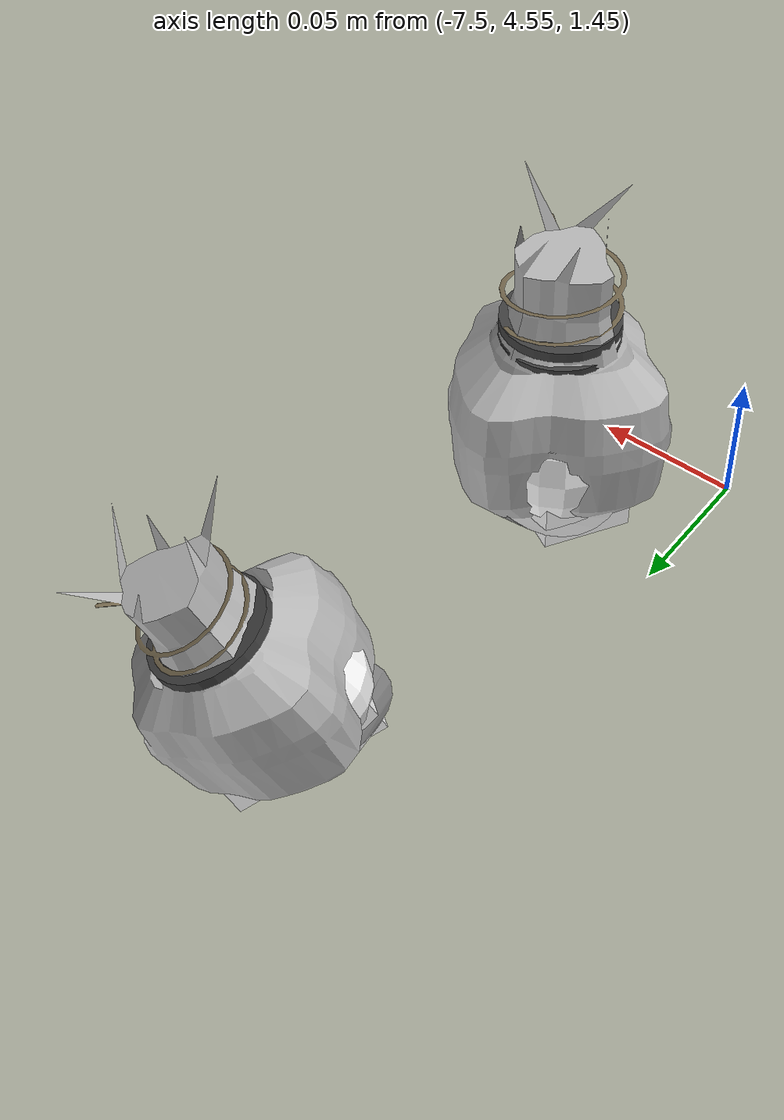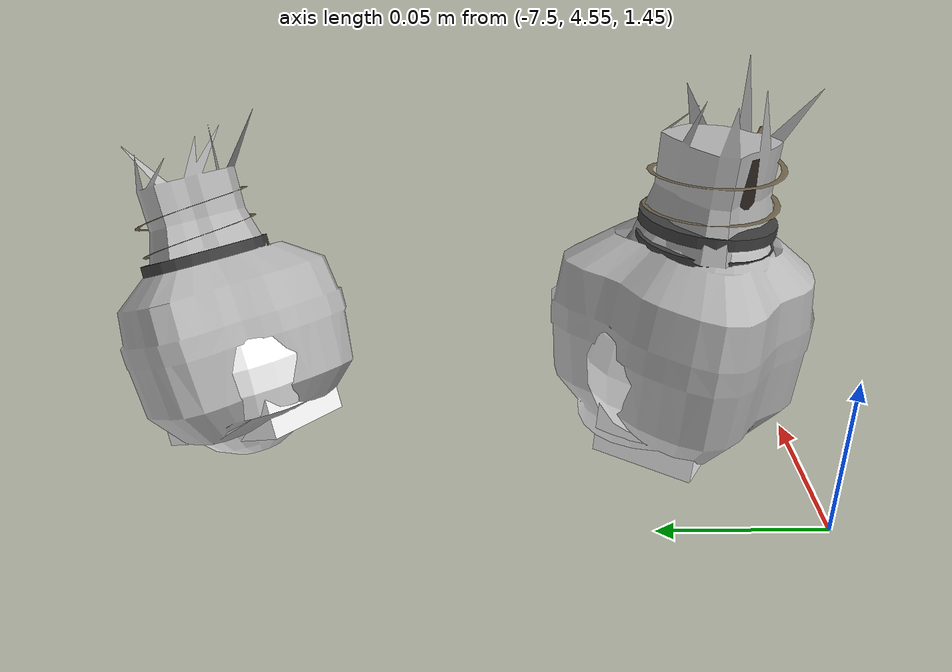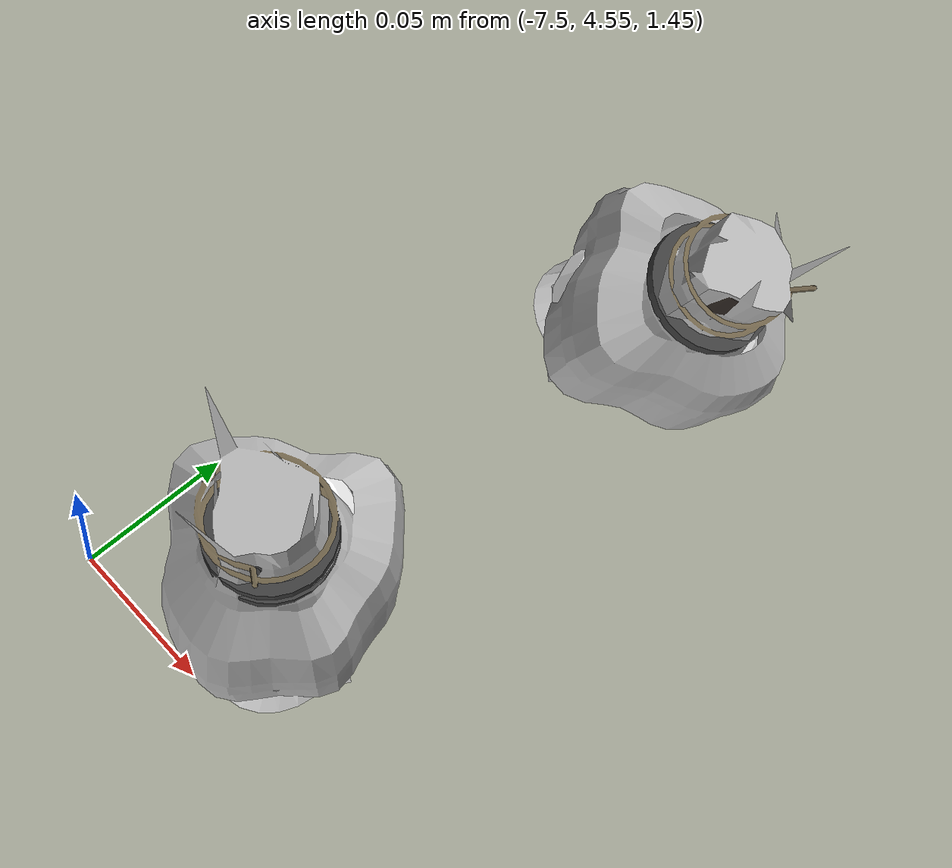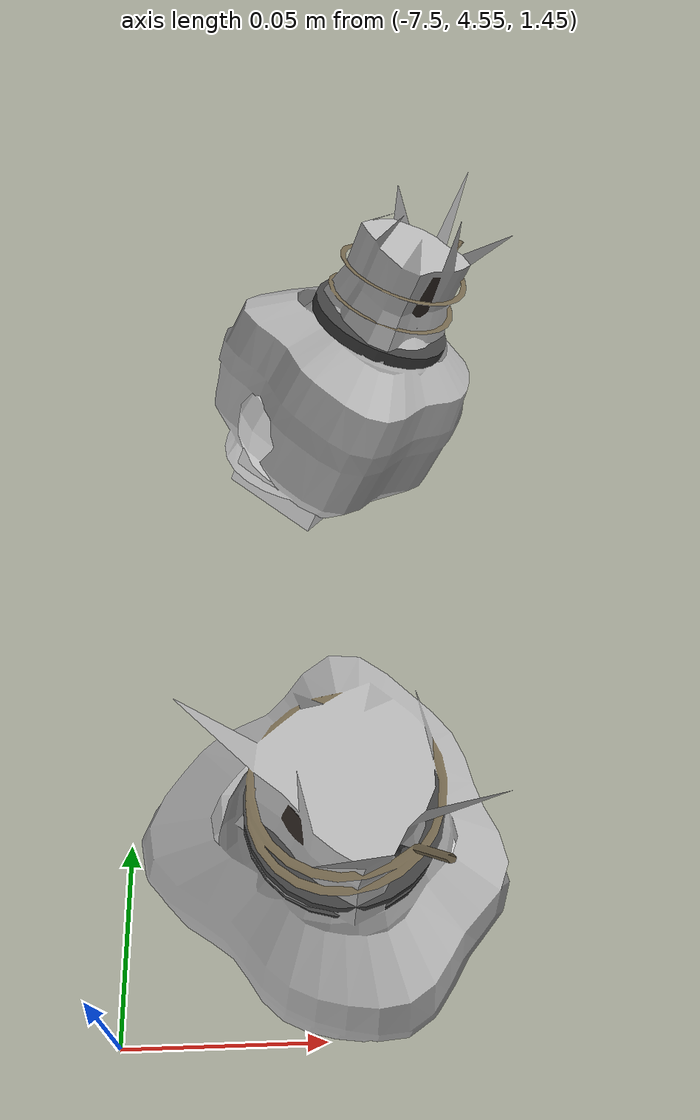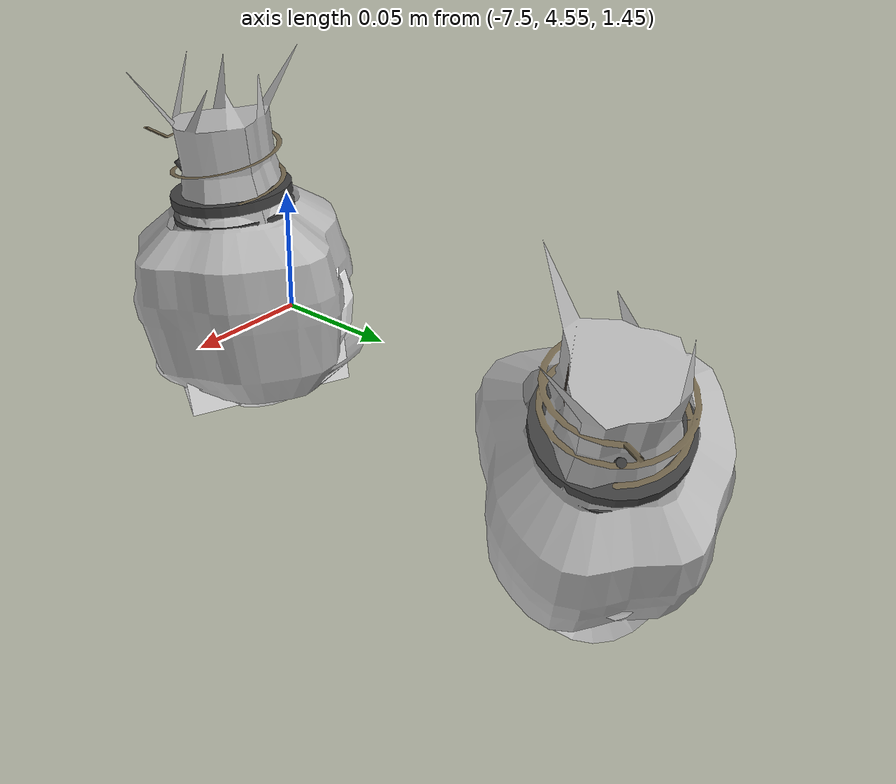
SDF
<sdf version="1.11">
 <world name="peach_orchard">
  <model name="ground">
   <static>true</static>
   <link name="link">
    <visual name="soil">
     <geometry><plane><normal>0 0 1</normal><size>32 22</size></plane></geometry>
     <material>
      <ambient>1 1 1 1</ambient>
      <diffuse>1 1 1 1</diffuse>
      <specular>0.1 0.1 0.1 1</specular>
      <pbr>
       <metal>
        <albedo_map>textures/soil_albedo.png</albedo_map>
        <normal_map type="tangent">textures/soil_normal.png</normal_map>
        <roughness>0.95</roughness>
        <metalness>0</metalness>
       </metal>
      </pbr>
     </material>
    </visual>
    <collision name="c_soil">
     <geometry><plane><normal>0 0 1</normal><size>32 22</size></plane></geometry>
    </collision>
   </link>
  </model>
  <model name="peach_tree_r0_t5_01">
   <pose>-7.45 4.58612 1.45 0 0.0880699 -0.879591</pose>
   <static>true</static>
   <link name="bag">
    <visual name="bag_mesh">
     <pose>0 0 0.0491257 0 0 -0</pose>
     <geometry>
      <mesh><uri>model://peach_sim/meshes/bagged_peach.glb</uri><scale>0.975801 1.05311 1.11649</scale></mesh>
     </geometry>
    </visual>
    <visual name="body">
     <pose>0 0 0.0311257 0 0 0</pose>
     <geometry><ellipsoid><radii>0.0365925 0.0273808 0.0336158</radii></ellipsoid></geometry>
     <material>
      <ambient>1 1 1 1</ambient>
      <diffuse>1 1 1 1</diffuse>
      <specular>0.1 0.1 0.1 1</specular>
      <pbr>
       <metal>
        <albedo_map>textures/paper_bag_albedo.png</albedo_map>
        <normal_map type="tangent">textures/paper_bag_normal.png</normal_map>
        <roughness>0.72</roughness>
        <metalness>0</metalness>
       </metal>
      </pbr>
     </material>
    </visual>
    <visual name="bottom_fold">
     <pose>0 0 0.012 0 0 0.35</pose>
     <geometry><box><size>0.0567184 0.0314879 0.022</size></box></geometry>
     <material>
      <ambient>1 1 1 1</ambient>
      <diffuse>1 1 1 1</diffuse>
      <specular>0.1 0.1 0.1 1</specular>
      <pbr>
       <metal>
        <albedo_map>textures/paper_bag_albedo.png</albedo_map>
        <normal_map type="tangent">textures/paper_bag_normal.png</normal_map>
        <roughness>0.8</roughness>
        <metalness>0</metalness>
       </metal>
      </pbr>
     </material>
    </visual>
    <visual name="fruit">
     <pose>0 0 0.0215081 0 0 0</pose>
     <geometry><sphere><radius>0.0286085</radius></sphere></geometry>
     <material>
      <ambient>1 1 1 1</ambient>
      <diffuse>1 1 1 1</diffuse>
      <specular>0.1 0.1 0.1 1</specular>
      <pbr>
       <metal>
        <albedo_map>textures/fruit_skin_albedo.png</albedo_map>
        <normal_map type="tangent">textures/fruit_skin_normal.png</normal_map>
        <roughness>0.55</roughness>
        <metalness>0</metalness>
       </metal>
      </pbr>
     </material>
    </visual>
    <visual name="neck">
     <pose>0 0 0.0712515 0 0 0</pose>
     <geometry><cylinder><radius>0.013</radius><length>0.018</length></cylinder></geometry>
     <material>
      <ambient>1 1 1 1</ambient>
      <diffuse>1 1 1 1</diffuse>
      <specular>0.1 0.1 0.1 1</specular>
      <pbr>
       <metal>
        <albedo_map>textures/paper_bag_albedo.png</albedo_map>
        <normal_map type="tangent">textures/paper_bag_normal.png</normal_map>
        <roughness>0.75</roughness>
        <metalness>0</metalness>
       </metal>
      </pbr>
     </material>
    </visual>
    <visual name="gather">
     <pose>0 0 0.0522515 0 0 0</pose>
     <geometry><cylinder><radius>0.019</radius><length>0.02</length></cylinder></geometry>
     <material>
      <ambient>1 1 1 1</ambient>
      <diffuse>1 1 1 1</diffuse>
      <specular>0.1 0.1 0.1 1</specular>
      <pbr>
       <metal>
        <albedo_map>textures/paper_bag_albedo.png</albedo_map>
        <normal_map type="tangent">textures/paper_bag_normal.png</normal_map>
        <roughness>0.8</roughness>
        <metalness>0</metalness>
       </metal>
      </pbr>
     </material>
    </visual>
    <visual name="inner_paper">
     <pose>0 0 0.0762515 0 0 0</pose>
     <geometry><cylinder><radius>0.01</radius><length>0.008</length></cylinder></geometry>
     <material>
      <ambient>0.180392 0.14902 0.133333 1</ambient>
      <diffuse>0.180392 0.14902 0.133333 1</diffuse>
      <specular>0.1 0.1 0.1 1</specular>
     </material>
    </visual>
    <visual name="wire_0">
     <pose>0 0 0.0662515 0 0 0</pose>
     <geometry><cylinder><radius>0.0205</radius><length>0.0035</length></cylinder></geometry>
     <material>
      <ambient>0.25 0.25 0.25 1</ambient>
      <diffuse>0.25 0.25 0.25 1</diffuse>
      <specular>0.1 0.1 0.1 1</specular>
     </material>
    </visual>
    <visual name="wire_1">
     <pose>0 0 0.0732515 0 0 0</pose>
     <geometry><cylinder><radius>0.0205</radius><length>0.0035</length></cylinder></geometry>
     <material>
      <ambient>0.25 0.25 0.25 1</ambient>
      <diffuse>0.25 0.25 0.25 1</diffuse>
      <specular>0.1 0.1 0.1 1</specular>
     </material>
    </visual>
    <visual name="wire_tail">
     <pose>0.01 0 0.0742515 0 0.521618 0</pose>
     <geometry><cylinder><radius>0.0012</radius><length>0.026</length></cylinder></geometry>
     <material>
      <ambient>0.25 0.25 0.25 1</ambient>
      <diffuse>0.25 0.25 0.25 1</diffuse>
      <specular>0.1 0.1 0.1 1</specular>
     </material>
    </visual>
    <collision name="c_body">
     <pose>0 0 0.0311257 0 0 0</pose>
     <geometry><cylinder><radius>0.0365925</radius><length>0.0622515</length></cylinder></geometry>
    </collision>
   </link>
  </model>
  <model name="peach_tree_r0_t5_02">
   <pose>-7.45 4.72195 1.45 0 0.456826 0.606789</pose>
   <static>true</static>
   <link name="bag">
    <visual name="bag_mesh">
     <pose>0 0 0.0420585 0 0 0</pose>
     <geometry>
      <mesh><uri>model://peach_sim/meshes/bagged_peach.glb</uri><scale>0.915037 0.978658 0.955875</scale></mesh>
     </geometry>
    </visual>
    <visual name="body">
     <pose>0 0 0.0240585 0 0 0</pose>
     <geometry><ellipsoid><radii>0.0343139 0.0254451 0.0259832</radii></ellipsoid></geometry>
     <material>
      <ambient>1 1 1 1</ambient>
      <diffuse>1 1 1 1</diffuse>
      <specular>0.1 0.1 0.1 1</specular>
      <pbr>
       <metal>
        <albedo_map>textures/paper_bag_albedo.png</albedo_map>
        <normal_map type="tangent">textures/paper_bag_normal.png</normal_map>
        <roughness>0.72</roughness>
        <metalness>0</metalness>
       </metal>
      </pbr>
     </material>
    </visual>
    <visual name="bottom_fold">
     <pose>0 0 0.012 0 0 0.35</pose>
     <geometry><box><size>0.0531865 0.0292619 0.022</size></box></geometry>
     <material>
      <ambient>1 1 1 1</ambient>
      <diffuse>1 1 1 1</diffuse>
      <specular>0.1 0.1 0.1 1</specular>
      <pbr>
       <metal>
        <albedo_map>textures/paper_bag_albedo.png</albedo_map>
        <normal_map type="tangent">textures/paper_bag_normal.png</normal_map>
        <roughness>0.8</roughness>
        <metalness>0</metalness>
       </metal>
      </pbr>
     </material>
    </visual>
    <visual name="fruit">
     <pose>0 0 0.0175827 0 0 0</pose>
     <geometry><sphere><radius>0.024526</radius></sphere></geometry>
     <material>
      <ambient>1 1 1 1</ambient>
      <diffuse>1 1 1 1</diffuse>
      <specular>0.1 0.1 0.1 1</specular>
      <pbr>
       <metal>
        <albedo_map>textures/fruit_skin_albedo.png</albedo_map>
        <normal_map type="tangent">textures/fruit_skin_normal.png</normal_map>
        <roughness>0.55</roughness>
        <metalness>0</metalness>
       </metal>
      </pbr>
     </material>
    </visual>
    <visual name="neck">
     <pose>0 0 0.057117 0 0 0</pose>
     <geometry><cylinder><radius>0.013</radius><length>0.018</length></cylinder></geometry>
     <material>
      <ambient>1 1 1 1</ambient>
      <diffuse>1 1 1 1</diffuse>
      <specular>0.1 0.1 0.1 1</specular>
      <pbr>
       <metal>
        <albedo_map>textures/paper_bag_albedo.png</albedo_map>
        <normal_map type="tangent">textures/paper_bag_normal.png</normal_map>
        <roughness>0.75</roughness>
        <metalness>0</metalness>
       </metal>
      </pbr>
     </material>
    </visual>
    <visual name="gather">
     <pose>0 0 0.038117 0 0 0</pose>
     <geometry><cylinder><radius>0.019</radius><length>0.02</length></cylinder></geometry>
     <material>
      <ambient>1 1 1 1</ambient>
      <diffuse>1 1 1 1</diffuse>
      <specular>0.1 0.1 0.1 1</specular>
      <pbr>
       <metal>
        <albedo_map>textures/paper_bag_albedo.png</albedo_map>
        <normal_map type="tangent">textures/paper_bag_normal.png</normal_map>
        <roughness>0.8</roughness>
        <metalness>0</metalness>
       </metal>
      </pbr>
     </material>
    </visual>
    <visual name="inner_paper">
     <pose>0 0 0.062117 0 0 0</pose>
     <geometry><cylinder><radius>0.01</radius><length>0.008</length></cylinder></geometry>
     <material>
      <ambient>0.180392 0.14902 0.133333 1</ambient>
      <diffuse>0.180392 0.14902 0.133333 1</diffuse>
      <specular>0.1 0.1 0.1 1</specular>
     </material>
    </visual>
    <visual name="wire_0">
     <pose>0 0 0.052117 0 0 0</pose>
     <geometry><cylinder><radius>0.0205</radius><length>0.0035</length></cylinder></geometry>
     <material>
      <ambient>0.25 0.25 0.25 1</ambient>
      <diffuse>0.25 0.25 0.25 1</diffuse>
      <specular>0.1 0.1 0.1 1</specular>
     </material>
    </visual>
    <visual name="wire_1">
     <pose>0 0 0.059117 0 0 0</pose>
     <geometry><cylinder><radius>0.0205</radius><length>0.0035</length></cylinder></geometry>
     <material>
      <ambient>0.25 0.25 0.25 1</ambient>
      <diffuse>0.25 0.25 0.25 1</diffuse>
      <specular>0.1 0.1 0.1 1</specular>
     </material>
    </visual>
    <visual name="wire_tail">
     <pose>0.01 0 0.060117 0 0.521618 0</pose>
     <geometry><cylinder><radius>0.0012</radius><length>0.026</length></cylinder></geometry>
     <material>
      <ambient>0.25 0.25 0.25 1</ambient>
      <diffuse>0.25 0.25 0.25 1</diffuse>
      <specular>0.1 0.1 0.1 1</specular>
     </material>
    </visual>
    <collision name="c_body">
     <pose>0 0 0.0240585 0 0 0</pose>
     <geometry><cylinder><radius>0.0343139</radius><length>0.048117</length></cylinder></geometry>
    </collision>
   </link>
  </model>
 </world>
</sdf>
